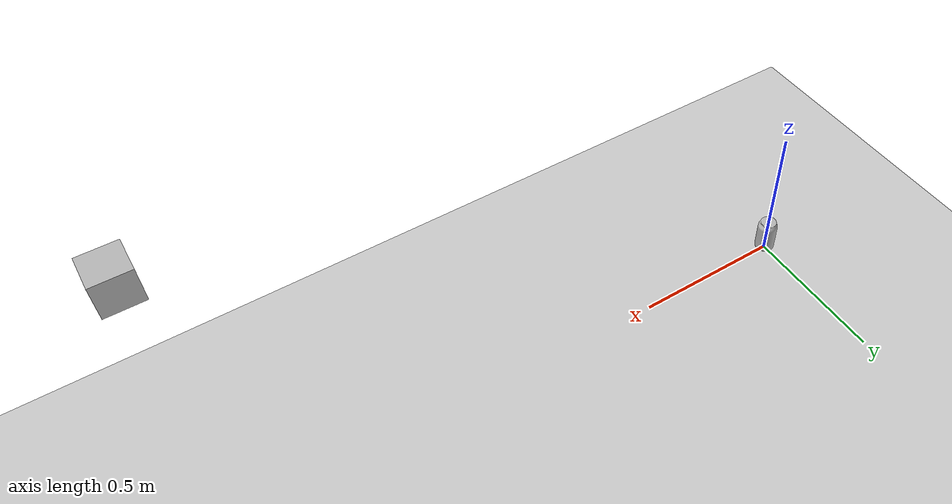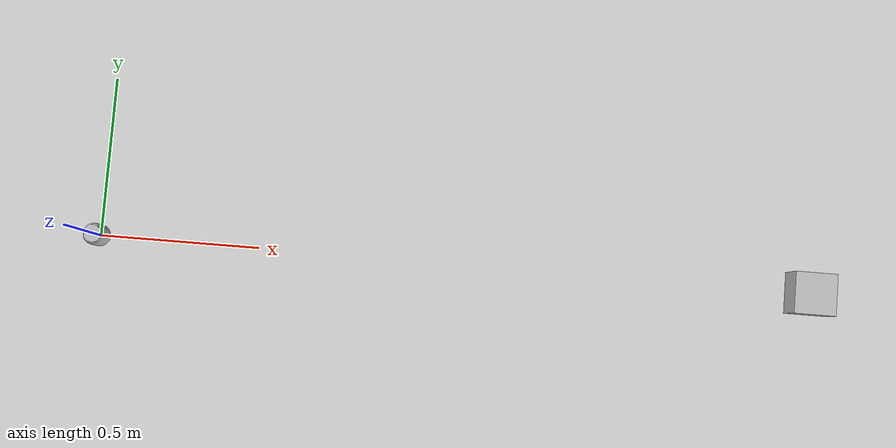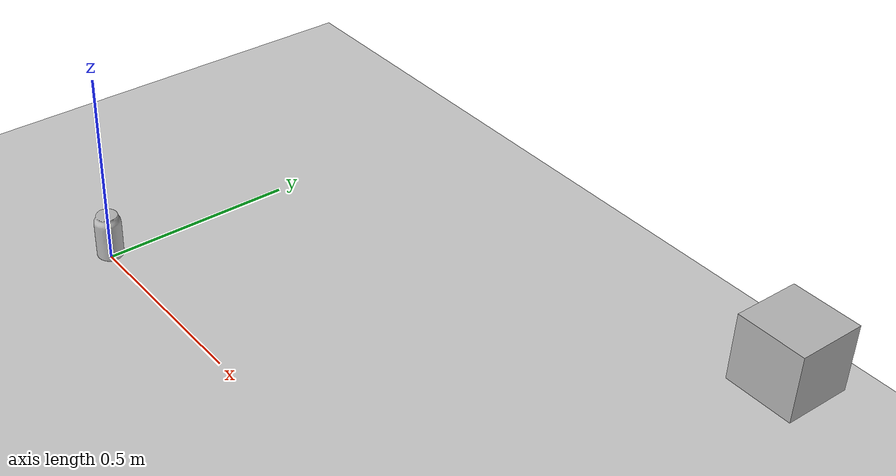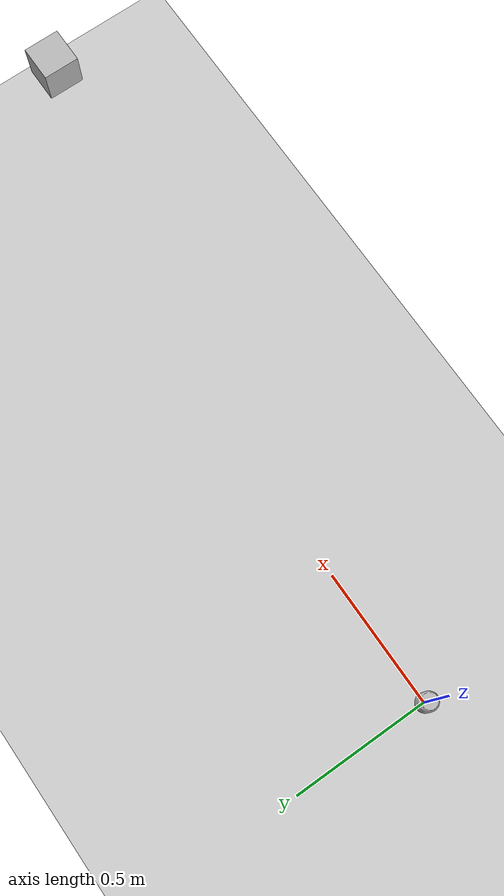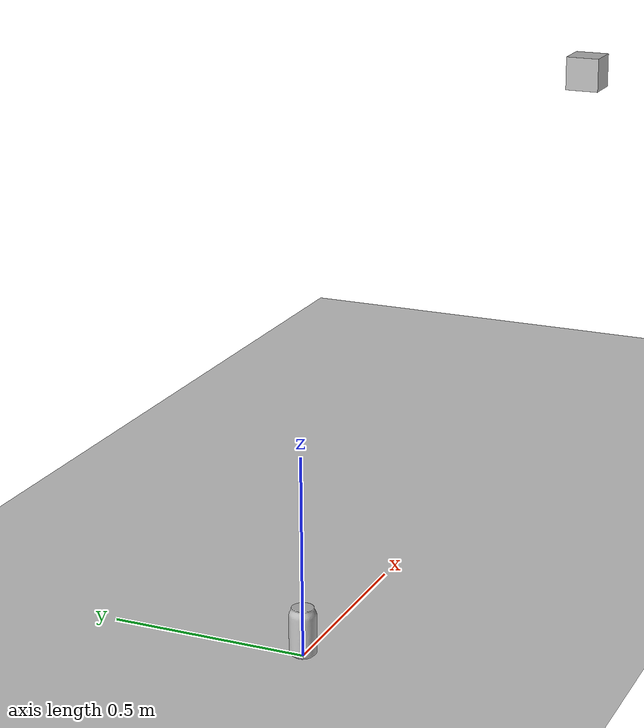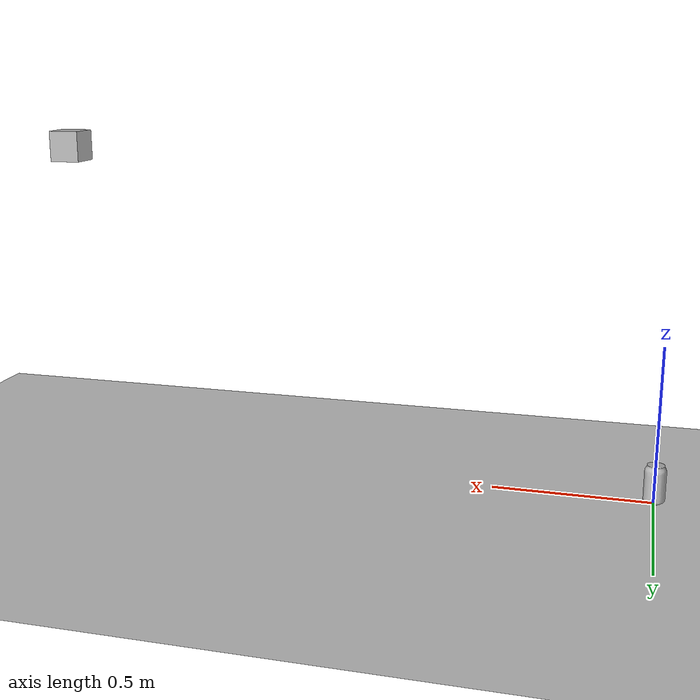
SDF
<sdf version='1.8'>
  <world name='shapes'>
    <plugin name='ignition::gazebo::systems::Physics' filename='ignition-gazebo-physics-system'/>
    <plugin name='ignition::gazebo::systems::UserCommands' filename='ignition-gazebo-user-commands-system'/>
    <plugin name='ignition::gazebo::systems::SceneBroadcaster' filename='ignition-gazebo-scene-broadcaster-system'/>
    <plugin name='ignition::gazebo::systems::Sensors' filename='ignition-gazebo-sensors-system'>
      <render_engine>ogre2</render_engine>
    </plugin>
    <gui fullscreen='false'>
      <plugin name='3D View' filename='MinimalScene'>
        <ignition-gui>
          <title>3D View</title>
          <property type='bool' key='showTitleBar'>false</property>
          <property type='string' key='state'>docked</property>
        </ignition-gui>
        <engine>ogre2</engine>
        <scene>scene</scene>
        <ambient_light>1.0 1.0 1.0</ambient_light>
        <background_color>0.8 0.8 0.8</background_color>
        <camera_pose>-6 0 6 0 0.5 0</camera_pose>
      </plugin>
      <plugin name='Entity context menu' filename='EntityContextMenuPlugin'>
        <ignition-gui>
          <property key='state' type='string'>floating</property>
          <property key='width' type='double'>5</property>
          <property key='height' type='double'>5</property>
          <property key='showTitleBar' type='bool'>false</property>
        </ignition-gui>
      </plugin>
      <plugin name='Scene Manager' filename='GzSceneManager'>
        <ignition-gui>
          <property key='resizable' type='bool'>false</property>
          <property key='width' type='double'>5</property>
          <property key='height' type='double'>5</property>
          <property key='state' type='string'>floating</property>
          <property key='showTitleBar' type='bool'>false</property>
        </ignition-gui>
      </plugin>
      <plugin name='Interactive view control' filename='InteractiveViewControl'>
        <ignition-gui>
          <property key='resizable' type='bool'>false</property>
          <property key='width' type='double'>5</property>
          <property key='height' type='double'>5</property>
          <property key='state' type='string'>floating</property>
          <property key='showTitleBar' type='bool'>false</property>
        </ignition-gui>
      </plugin>
      <plugin name='Camera Tracking' filename='CameraTracking'>
        <ignition-gui>
          <property key='resizable' type='bool'>false</property>
          <property key='width' type='double'>5</property>
          <property key='height' type='double'>5</property>
          <property key='state' type='string'>floating</property>
          <property key='showTitleBar' type='bool'>false</property>
        </ignition-gui>
      </plugin>
      <plugin name='World control' filename='WorldControl'>
        <ignition-gui>
          <title>World control</title>
          <property type='bool' key='showTitleBar'>false</property>
          <property type='bool' key='resizable'>false</property>
          <property type='double' key='height'>72</property>
          <property type='double' key='width'>121</property>
          <property type='double' key='z'>1</property>
          <property type='string' key='state'>floating</property>
          <anchors target='3D View'>
            <line own='left' target='left'/>
            <line own='bottom' target='bottom'/>
          </anchors>
        </ignition-gui>
        <play_pause>true</play_pause>
        <step>true</step>
        <start_paused>true</start_paused>
        <use_event>true</use_event>
      </plugin>
      <plugin name='World stats' filename='WorldStats'>
        <ignition-gui>
          <title>World stats</title>
          <property type='bool' key='showTitleBar'>false</property>
          <property type='bool' key='resizable'>false</property>
          <property type='double' key='height'>110</property>
          <property type='double' key='width'>290</property>
          <property type='double' key='z'>1</property>
          <property type='string' key='state'>floating</property>
          <anchors target='3D View'>
            <line own='right' target='right'/>
            <line own='bottom' target='bottom'/>
          </anchors>
        </ignition-gui>
        <sim_time>true</sim_time>
        <real_time>true</real_time>
        <real_time_factor>true</real_time_factor>
        <iterations>true</iterations>
      </plugin>
      <plugin name='Full 2D' filename='ImageDisplay'>
        <topic>boxes_full_2d_image</topic>
        <ignition-gui>
          <title>Full 2D</title>
          <property key='state' type='string'>docked</property>
          <property type='double' key='height'>400</property>
          <property type='double' key='width'>600</property>
        </ignition-gui>
      </plugin>
      <plugin name='Visible 2D' filename='ImageDisplay'>
        <topic>boxes_visible_2d_image</topic>
        <ignition-gui>
          <title>Visible 2D</title>
          <property key='state' type='string'>docked</property>
          <property type='double' key='height'>400</property>
          <property type='double' key='width'>600</property>
        </ignition-gui>
      </plugin>
      <plugin name='3D' filename='ImageDisplay'>
        <topic>boxes_3d_image</topic>
        <ignition-gui>
          <title>3D</title>
          <property key='state' type='string'>docked</property>
          <property type='double' key='height'>400</property>
          <property type='double' key='width'>600</property>
        </ignition-gui>
      </plugin>
    </gui>
    <scene>
      <ambient>1 1 1 1</ambient>
      <background>0.8 0.8 0.8 1</background>
      <shadows>1</shadows>
    </scene>
    <light name='sun' type='directional'>
      <cast_shadows>1</cast_shadows>
      <pose>0 0 10 0 -0 0</pose>
      <diffuse>0.8 0.8 0.8 1</diffuse>
      <specular>0.2 0.2 0.2 1</specular>
      <attenuation>
        <range>1000</range>
        <constant>0.90000000000000002</constant>
        <linear>0.01</linear>
        <quadratic>0.001</quadratic>
      </attenuation>
      <direction>-0.5 0.1 -0.9</direction>
      <spot>
        <inner_angle>0</inner_angle>
        <outer_angle>0</outer_angle>
        <falloff>0</falloff>
      </spot>
    </light>
    <gravity>0 0 -9.8</gravity>
    <magnetic_field>6e-06 2.3e-05 -4.2e-05</magnetic_field>
    <atmosphere type='adiabatic'/>
    <physics type='ode'>
      <max_step_size>0.001</max_step_size>
      <real_time_factor>1</real_time_factor>
      <real_time_update_rate>1000</real_time_update_rate>
    </physics>
    <model name='ground_plane'>
      <static>1</static>
      <link name='link'>
        <collision name='collision'>
          <geometry>
            <plane>
              <normal>0 0 1</normal>
              <size>100 100</size>
            </plane>
          </geometry>
          <surface>
            <friction>
              <ode/>
            </friction>
            <bounce/>
            <contact/>
          </surface>
        </collision>
        <visual name='visual'>
          <geometry>
            <plane>
              <normal>0 0 1</normal>
              <size>100 100</size>
            </plane>
          </geometry>
          <material>
            <ambient>0.8 0.8 0.8 1</ambient>
            <diffuse>0.8 0.8 0.8 1</diffuse>
            <specular>0.8 0.8 0.8 1</specular>
          </material>
        </visual>
      </link>
      <pose>0 0 0 0 -0 0</pose>
    </model>

    <model name="coke_can">
    <link name="link">
      <inertial>
        <pose>0 0 0.06 0 0 0</pose>
        <mass>0.014</mass>
        <inertia>
          <ixx>0.00055575</ixx>
          <ixy>0</ixy>
          <ixz>0</ixz>
          <iyy>0.00055575</iyy>
          <iyz>0</iyz>
          <izz>0.0001755</izz>
        </inertia>
      </inertial>
      <collision name="collision">
        <pose>0.003937 0.0047244 -0.18 0 0 0</pose>
        <geometry>
          <mesh>
            <uri>coke_can.dae</uri>
          </mesh>
        </geometry>
        <surface>
          <friction>
            <ode>
              <mu>30.0</mu>
              <mu2>30.0</mu2>
            </ode>
          </friction>
          <contact>
            <ode>
              <kp>10000000.0</kp>
              <kd>1.0</kd>
              <min_depth>0.001</min_depth>
              <max_vel>0.1</max_vel>
            </ode>
          </contact>
        </surface>
      </collision>
      <visual name="visual">
        <pose>0.003937 0.0047244 -0.18 0 0 0</pose>
        <geometry>
          <mesh>
            <uri>coke_can.dae</uri>
          </mesh>
        </geometry>
        <plugin filename="ignition-gazebo-label-system" name="ignition::gazebo::systems::Label">
            <label>10</label>
          </plugin>
      </visual>
    </link>
  </model>

    <model name="boundingbox_camera">
     <pose>2 0 1.0 0 0.0 3.14</pose>
     <link name="link">
       <pose>0.05 0.05 0.05 0 0 0</pose>
       <inertial>
         <mass>0.1</mass>
         <inertia>
           <ixx>0.000166667</ixx>
           <iyy>0.000166667</iyy>
           <izz>0.000166667</izz>
         </inertia>
       </inertial>
       <collision name="collision">
         <geometry>
           <box>
             <size>0.1 0.1 0.1</size>
           </box>
         </geometry>
       </collision>
       <visual name="visual">
         <geometry>
           <box>
             <size>0.1 0.1 0.1</size>
           </box>
         </geometry>
       </visual>
       <sensor name="boundingbox_camera" type="boundingbox_camera">
         <topic>boxes</topic>
         <camera>
           <box_type>2d</box_type>
           <horizontal_fov>1.047</horizontal_fov>
           <image>
             <width>800</width>
             <height>600</height>
           </image>
           <clip>
             <near>0.1</near>
             <far>10</far>
           </clip>
         </camera>
         <always_on>1</always_on>
         <update_rate>30</update_rate>
         <visualize>true</visualize>
       </sensor>
     </link>
   </model>

  </world>
</sdf>
